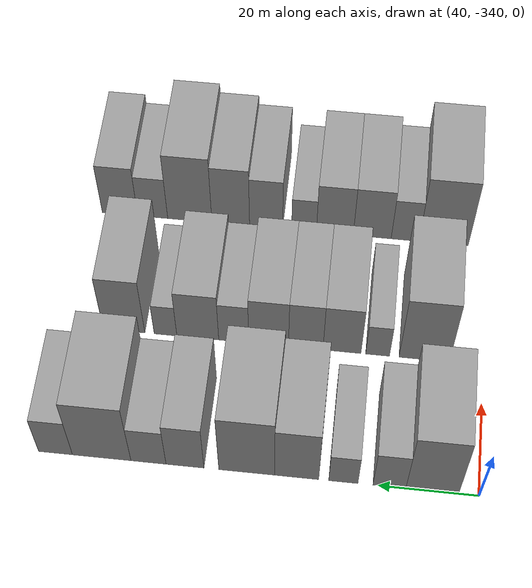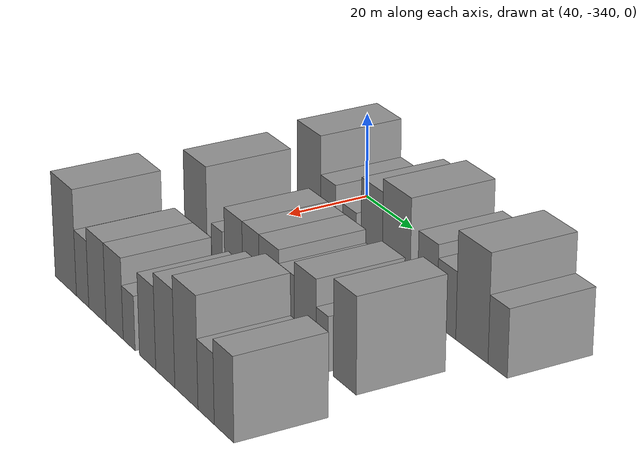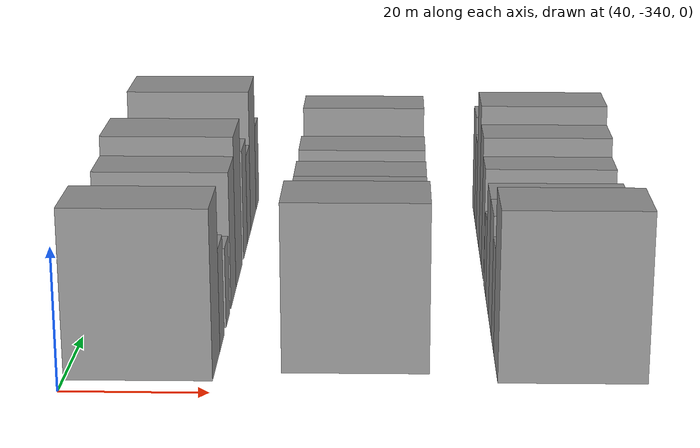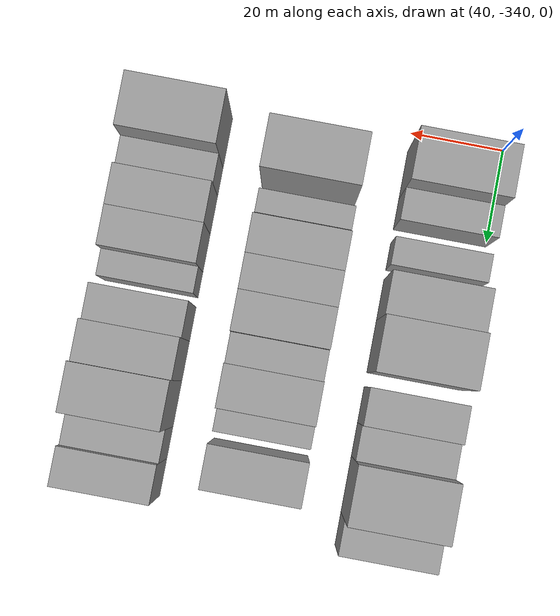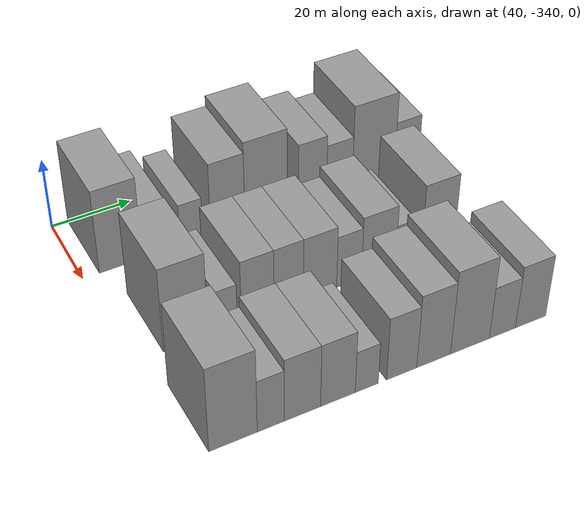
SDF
<sdf version="1.6">
 <world name="default">
  <model name="building_1">
   <static>1</static>
   <pose>50.0000 -330.7542 0 0.000000 0.000000 0.000000</pose>
   <link name="link">
    <pose>0 0 12.00 0 0 0</pose>
    <collision name="collision"><geometry><box><size>20.0000 10.4916 24.0000</size></box></geometry></collision>
    <visual name="visual">
     <cast_shadows>0</cast_shadows>
     <geometry><box><size>20.0000 10.4916 24.0000</size></box></geometry>
     <material>
      <script>
       <uri>model://grey_wall/materials/scripts</uri>
       <uri>model://grey_wall/materials/textures</uri>
       <name>vrc/grey_wall</name>
      </script>
     </material>
    </visual>
   </link>
  </model>
  <model name="building_2">
   <static>1</static>
   <pose>50.0000 -322.2304 0 0.000000 0.000000 0.000000</pose>
   <link name="link">
    <pose>0 0 7.50 0 0 0</pose>
    <collision name="collision"><geometry><box><size>20.0000 6.5560 15.0000</size></box></geometry></collision>
    <visual name="visual">
     <cast_shadows>0</cast_shadows>
     <geometry><box><size>20.0000 6.5560 15.0000</size></box></geometry>
     <material>
      <script>
       <uri>model://grey_wall/materials/scripts</uri>
       <uri>model://grey_wall/materials/textures</uri>
       <name>vrc/grey_wall</name>
      </script>
     </material>
    </visual>
   </link>
  </model>
  <model name="building_3">
   <static>1</static>
   <pose>50.0000 -313.0369 0 0.000000 0.000000 0.000000</pose>
   <link name="link">
    <pose>0 0 6.00 0 0 0</pose>
    <collision name="collision"><geometry><box><size>20.0000 5.8309 12.0000</size></box></geometry></collision>
    <visual name="visual">
     <cast_shadows>0</cast_shadows>
     <geometry><box><size>20.0000 5.8309 12.0000</size></box></geometry>
     <material>
      <script>
       <uri>model://grey_wall/materials/scripts</uri>
       <uri>model://grey_wall/materials/textures</uri>
       <name>vrc/grey_wall</name>
      </script>
     </material>
    </visual>
   </link>
  </model>
  <model name="building_4">
   <static>1</static>
   <pose>50.0000 -303.6895 0 0.000000 0.000000 0.000000</pose>
   <link name="link">
    <pose>0 0 10.50 0 0 0</pose>
    <collision name="collision"><geometry><box><size>20.0000 8.8640 21.0000</size></box></geometry></collision>
    <visual name="visual">
     <cast_shadows>0</cast_shadows>
     <geometry><box><size>20.0000 8.8640 21.0000</size></box></geometry>
     <material>
      <script>
       <uri>model://grey_wall/materials/scripts</uri>
       <uri>model://grey_wall/materials/textures</uri>
       <name>vrc/grey_wall</name>
      </script>
     </material>
    </visual>
   </link>
  </model>
  <model name="building_5">
   <static>1</static>
   <pose>50.0000 -293.6580 0 0.000000 0.000000 0.000000</pose>
   <link name="link">
    <pose>0 0 12.00 0 0 0</pose>
    <collision name="collision"><geometry><box><size>20.0000 11.1990 24.0000</size></box></geometry></collision>
    <visual name="visual">
     <cast_shadows>0</cast_shadows>
     <geometry><box><size>20.0000 11.1990 24.0000</size></box></geometry>
     <material>
      <script>
       <uri>model://grey_wall/materials/scripts</uri>
       <uri>model://grey_wall/materials/textures</uri>
       <name>vrc/grey_wall</name>
      </script>
     </material>
    </visual>
   </link>
  </model>
  <model name="building_6">
   <static>1</static>
   <pose>50.0000 -281.2292 0 0.000000 0.000000 0.000000</pose>
   <link name="link">
    <pose>0 0 9.00 0 0 0</pose>
    <collision name="collision"><geometry><box><size>20.0000 7.6587 18.0000</size></box></geometry></collision>
    <visual name="visual">
     <cast_shadows>0</cast_shadows>
     <geometry><box><size>20.0000 7.6587 18.0000</size></box></geometry>
     <material>
      <script>
       <uri>model://grey_wall/materials/scripts</uri>
       <uri>model://grey_wall/materials/textures</uri>
       <name>vrc/grey_wall</name>
      </script>
     </material>
    </visual>
   </link>
  </model>
  <model name="building_7">
   <static>1</static>
   <pose>50.0000 -273.8383 0 0.000000 0.000000 0.000000</pose>
   <link name="link">
    <pose>0 0 7.50 0 0 0</pose>
    <collision name="collision"><geometry><box><size>20.0000 7.1231 15.0000</size></box></geometry></collision>
    <visual name="visual">
     <cast_shadows>0</cast_shadows>
     <geometry><box><size>20.0000 7.1231 15.0000</size></box></geometry>
     <material>
      <script>
       <uri>model://grey_wall/materials/scripts</uri>
       <uri>model://grey_wall/materials/textures</uri>
       <name>vrc/grey_wall</name>
      </script>
     </material>
    </visual>
   </link>
  </model>
  <model name="building_8">
   <static>1</static>
   <pose>50.0000 -264.3221 0 0.000000 0.000000 0.000000</pose>
   <link name="link">
    <pose>0 0 12.00 0 0 0</pose>
    <collision name="collision"><geometry><box><size>20.0000 11.9093 24.0000</size></box></geometry></collision>
    <visual name="visual">
     <cast_shadows>0</cast_shadows>
     <geometry><box><size>20.0000 11.9093 24.0000</size></box></geometry>
     <material>
      <script>
       <uri>model://grey_wall/materials/scripts</uri>
       <uri>model://grey_wall/materials/textures</uri>
       <name>vrc/grey_wall</name>
      </script>
     </material>
    </visual>
   </link>
  </model>
  <model name="building_9">
   <static>1</static>
   <pose>50.0000 -254.9074 0 0.000000 0.000000 0.000000</pose>
   <link name="link">
    <pose>0 0 7.50 0 0 0</pose>
    <collision name="collision"><geometry><box><size>20.0000 6.9201 15.0000</size></box></geometry></collision>
    <visual name="visual">
     <cast_shadows>0</cast_shadows>
     <geometry><box><size>20.0000 6.9201 15.0000</size></box></geometry>
     <material>
      <script>
       <uri>model://grey_wall/materials/scripts</uri>
       <uri>model://grey_wall/materials/textures</uri>
       <name>vrc/grey_wall</name>
      </script>
     </material>
    </visual>
   </link>
  </model>
  <model name="building_77">
   <static>1</static>
   <pose>79.0000 -327.7335 0 0.000000 0.000000 0.000000</pose>
   <link name="link">
    <pose>0 0 12.00 0 0 0</pose>
    <collision name="collision"><geometry><box><size>20.0000 10.5329 24.0000</size></box></geometry></collision>
    <visual name="visual">
     <cast_shadows>0</cast_shadows>
     <geometry><box><size>20.0000 10.5329 24.0000</size></box></geometry>
     <material>
      <script>
       <uri>model://grey_wall/materials/scripts</uri>
       <uri>model://grey_wall/materials/textures</uri>
       <name>vrc/grey_wall</name>
      </script>
     </material>
    </visual>
   </link>
  </model>
  <model name="building_78">
   <static>1</static>
   <pose>79.0000 -317.9651 0 0.000000 0.000000 0.000000</pose>
   <link name="link">
    <pose>0 0 6.00 0 0 0</pose>
    <collision name="collision"><geometry><box><size>20.0000 5.0040 12.0000</size></box></geometry></collision>
    <visual name="visual">
     <cast_shadows>0</cast_shadows>
     <geometry><box><size>20.0000 5.0040 12.0000</size></box></geometry>
     <material>
      <script>
       <uri>model://grey_wall/materials/scripts</uri>
       <uri>model://grey_wall/materials/textures</uri>
       <name>vrc/grey_wall</name>
      </script>
     </material>
    </visual>
   </link>
  </model>
  <model name="building_79">
   <static>1</static>
   <pose>79.0000 -310.4684 0 0.000000 0.000000 0.000000</pose>
   <link name="link">
    <pose>0 0 9.00 0 0 0</pose>
    <collision name="collision"><geometry><box><size>20.0000 7.9895 18.0000</size></box></geometry></collision>
    <visual name="visual">
     <cast_shadows>0</cast_shadows>
     <geometry><box><size>20.0000 7.9895 18.0000</size></box></geometry>
     <material>
      <script>
       <uri>model://grey_wall/materials/scripts</uri>
       <uri>model://grey_wall/materials/textures</uri>
       <name>vrc/grey_wall</name>
      </script>
     </material>
    </visual>
   </link>
  </model>
  <model name="building_80">
   <static>1</static>
   <pose>79.0000 -302.8256 0 0.000000 0.000000 0.000000</pose>
   <link name="link">
    <pose>0 0 9.00 0 0 0</pose>
    <collision name="collision"><geometry><box><size>20.0000 7.2963 18.0000</size></box></geometry></collision>
    <visual name="visual">
     <cast_shadows>0</cast_shadows>
     <geometry><box><size>20.0000 7.2963 18.0000</size></box></geometry>
     <material>
      <script>
       <uri>model://grey_wall/materials/scripts</uri>
       <uri>model://grey_wall/materials/textures</uri>
       <name>vrc/grey_wall</name>
      </script>
     </material>
    </visual>
   </link>
  </model>
  <model name="building_81">
   <static>1</static>
   <pose>79.0000 -294.9675 0 0.000000 0.000000 0.000000</pose>
   <link name="link">
    <pose>0 0 9.00 0 0 0</pose>
    <collision name="collision"><geometry><box><size>20.0000 8.4199 18.0000</size></box></geometry></collision>
    <visual name="visual">
     <cast_shadows>0</cast_shadows>
     <geometry><box><size>20.0000 8.4199 18.0000</size></box></geometry>
     <material>
      <script>
       <uri>model://grey_wall/materials/scripts</uri>
       <uri>model://grey_wall/materials/textures</uri>
       <name>vrc/grey_wall</name>
      </script>
     </material>
    </visual>
   </link>
  </model>
  <model name="building_82">
   <static>1</static>
   <pose>79.0000 -287.5718 0 0.000000 0.000000 0.000000</pose>
   <link name="link">
    <pose>0 0 7.50 0 0 0</pose>
    <collision name="collision"><geometry><box><size>20.0000 6.3714 15.0000</size></box></geometry></collision>
    <visual name="visual">
     <cast_shadows>0</cast_shadows>
     <geometry><box><size>20.0000 6.3714 15.0000</size></box></geometry>
     <material>
      <script>
       <uri>model://grey_wall/materials/scripts</uri>
       <uri>model://grey_wall/materials/textures</uri>
       <name>vrc/grey_wall</name>
      </script>
     </material>
    </visual>
   </link>
  </model>
  <model name="building_83">
   <static>1</static>
   <pose>79.0000 -279.9257 0 0.000000 0.000000 0.000000</pose>
   <link name="link">
    <pose>0 0 9.00 0 0 0</pose>
    <collision name="collision"><geometry><box><size>20.0000 8.9208 18.0000</size></box></geometry></collision>
    <visual name="visual">
     <cast_shadows>0</cast_shadows>
     <geometry><box><size>20.0000 8.9208 18.0000</size></box></geometry>
     <material>
      <script>
       <uri>model://grey_wall/materials/scripts</uri>
       <uri>model://grey_wall/materials/textures</uri>
       <name>vrc/grey_wall</name>
      </script>
     </material>
    </visual>
   </link>
  </model>
  <model name="building_84">
   <static>1</static>
   <pose>79.0000 -273.0476 0 0.000000 0.000000 0.000000</pose>
   <link name="link">
    <pose>0 0 6.00 0 0 0</pose>
    <collision name="collision"><geometry><box><size>20.0000 4.8353 12.0000</size></box></geometry></collision>
    <visual name="visual">
     <cast_shadows>0</cast_shadows>
     <geometry><box><size>20.0000 4.8353 12.0000</size></box></geometry>
     <material>
      <script>
       <uri>model://grey_wall/materials/scripts</uri>
       <uri>model://grey_wall/materials/textures</uri>
       <name>vrc/grey_wall</name>
      </script>
     </material>
    </visual>
   </link>
  </model>
  <model name="building_85">
   <static>1</static>
   <pose>79.0000 -264.1736 0 0.000000 0.000000 0.000000</pose>
   <link name="link">
    <pose>0 0 10.50 0 0 0</pose>
    <collision name="collision"><geometry><box><size>20.0000 8.9127 21.0000</size></box></geometry></collision>
    <visual name="visual">
     <cast_shadows>0</cast_shadows>
     <geometry><box><size>20.0000 8.9127 21.0000</size></box></geometry>
     <material>
      <script>
       <uri>model://grey_wall/materials/scripts</uri>
       <uri>model://grey_wall/materials/textures</uri>
       <name>vrc/grey_wall</name>
      </script>
     </material>
    </visual>
   </link>
  </model>
  <model name="building_148">
   <static>1</static>
   <pose>108.0000 -330.6023 0 0.000000 0.000000 0.000000</pose>
   <link name="link">
    <pose>0 0 12.00 0 0 0</pose>
    <collision name="collision"><geometry><box><size>20.0000 10.7953 24.0000</size></box></geometry></collision>
    <visual name="visual">
     <cast_shadows>0</cast_shadows>
     <geometry><box><size>20.0000 10.7953 24.0000</size></box></geometry>
     <material>
      <script>
       <uri>model://grey_wall/materials/scripts</uri>
       <uri>model://grey_wall/materials/textures</uri>
       <name>vrc/grey_wall</name>
      </script>
     </material>
    </visual>
   </link>
  </model>
  <model name="building_149">
   <static>1</static>
   <pose>108.0000 -322.1263 0 0.000000 0.000000 0.000000</pose>
   <link name="link">
    <pose>0 0 7.50 0 0 0</pose>
    <collision name="collision"><geometry><box><size>20.0000 6.1567 15.0000</size></box></geometry></collision>
    <visual name="visual">
     <cast_shadows>0</cast_shadows>
     <geometry><box><size>20.0000 6.1567 15.0000</size></box></geometry>
     <material>
      <script>
       <uri>model://grey_wall/materials/scripts</uri>
       <uri>model://grey_wall/materials/textures</uri>
       <name>vrc/grey_wall</name>
      </script>
     </material>
    </visual>
   </link>
  </model>
  <model name="building_150">
   <static>1</static>
   <pose>108.0000 -314.8632 0 0.000000 0.000000 0.000000</pose>
   <link name="link">
    <pose>0 0 9.00 0 0 0</pose>
    <collision name="collision"><geometry><box><size>20.0000 8.3695 18.0000</size></box></geometry></collision>
    <visual name="visual">
     <cast_shadows>0</cast_shadows>
     <geometry><box><size>20.0000 8.3695 18.0000</size></box></geometry>
     <material>
      <script>
       <uri>model://grey_wall/materials/scripts</uri>
       <uri>model://grey_wall/materials/textures</uri>
       <name>vrc/grey_wall</name>
      </script>
     </material>
    </visual>
   </link>
  </model>
  <model name="building_151">
   <static>1</static>
   <pose>108.0000 -306.5923 0 0.000000 0.000000 0.000000</pose>
   <link name="link">
    <pose>0 0 9.00 0 0 0</pose>
    <collision name="collision"><geometry><box><size>20.0000 8.1722 18.0000</size></box></geometry></collision>
    <visual name="visual">
     <cast_shadows>0</cast_shadows>
     <geometry><box><size>20.0000 8.1722 18.0000</size></box></geometry>
     <material>
      <script>
       <uri>model://grey_wall/materials/scripts</uri>
       <uri>model://grey_wall/materials/textures</uri>
       <name>vrc/grey_wall</name>
      </script>
     </material>
    </visual>
   </link>
  </model>
  <model name="building_152">
   <static>1</static>
   <pose>108.0000 -299.7460 0 0.000000 0.000000 0.000000</pose>
   <link name="link">
    <pose>0 0 6.00 0 0 0</pose>
    <collision name="collision"><geometry><box><size>20.0000 5.5204 12.0000</size></box></geometry></collision>
    <visual name="visual">
     <cast_shadows>0</cast_shadows>
     <geometry><box><size>20.0000 5.5204 12.0000</size></box></geometry>
     <material>
      <script>
       <uri>model://grey_wall/materials/scripts</uri>
       <uri>model://grey_wall/materials/textures</uri>
       <name>vrc/grey_wall</name>
      </script>
     </material>
    </visual>
   </link>
  </model>
  <model name="building_153">
   <static>1</static>
   <pose>108.0000 -291.3064 0 0.000000 0.000000 0.000000</pose>
   <link name="link">
    <pose>0 0 9.00 0 0 0</pose>
    <collision name="collision"><geometry><box><size>20.0000 7.3590 18.0000</size></box></geometry></collision>
    <visual name="visual">
     <cast_shadows>0</cast_shadows>
     <geometry><box><size>20.0000 7.3590 18.0000</size></box></geometry>
     <material>
      <script>
       <uri>model://grey_wall/materials/scripts</uri>
       <uri>model://grey_wall/materials/textures</uri>
       <name>vrc/grey_wall</name>
      </script>
     </material>
    </visual>
   </link>
  </model>
  <model name="building_154">
   <static>1</static>
   <pose>108.0000 -283.4145 0 0.000000 0.000000 0.000000</pose>
   <link name="link">
    <pose>0 0 10.50 0 0 0</pose>
    <collision name="collision"><geometry><box><size>20.0000 8.4247 21.0000</size></box></geometry></collision>
    <visual name="visual">
     <cast_shadows>0</cast_shadows>
     <geometry><box><size>20.0000 8.4247 21.0000</size></box></geometry>
     <material>
      <script>
       <uri>model://grey_wall/materials/scripts</uri>
       <uri>model://grey_wall/materials/textures</uri>
       <name>vrc/grey_wall</name>
      </script>
     </material>
    </visual>
   </link>
  </model>
  <model name="building_155">
   <static>1</static>
   <pose>108.0000 -274.2490 0 0.000000 0.000000 0.000000</pose>
   <link name="link">
    <pose>0 0 12.00 0 0 0</pose>
    <collision name="collision"><geometry><box><size>20.0000 9.9064 24.0000</size></box></geometry></collision>
    <visual name="visual">
     <cast_shadows>0</cast_shadows>
     <geometry><box><size>20.0000 9.9064 24.0000</size></box></geometry>
     <material>
      <script>
       <uri>model://grey_wall/materials/scripts</uri>
       <uri>model://grey_wall/materials/textures</uri>
       <name>vrc/grey_wall</name>
      </script>
     </material>
    </visual>
   </link>
  </model>
  <model name="building_156">
   <static>1</static>
   <pose>108.0000 -265.9204 0 0.000000 0.000000 0.000000</pose>
   <link name="link">
    <pose>0 0 7.50 0 0 0</pose>
    <collision name="collision"><geometry><box><size>20.0000 6.7509 15.0000</size></box></geometry></collision>
    <visual name="visual">
     <cast_shadows>0</cast_shadows>
     <geometry><box><size>20.0000 6.7509 15.0000</size></box></geometry>
     <material>
      <script>
       <uri>model://grey_wall/materials/scripts</uri>
       <uri>model://grey_wall/materials/textures</uri>
       <name>vrc/grey_wall</name>
      </script>
     </material>
    </visual>
   </link>
  </model>
  <model name="building_157">
   <static>1</static>
   <pose>108.0000 -258.5558 0 0.000000 0.000000 0.000000</pose>
   <link name="link">
    <pose>0 0 9.00 0 0 0</pose>
    <collision name="collision"><geometry><box><size>20.0000 7.9782 18.0000</size></box></geometry></collision>
    <visual name="visual">
     <cast_shadows>0</cast_shadows>
     <geometry><box><size>20.0000 7.9782 18.0000</size></box></geometry>
     <material>
      <script>
       <uri>model://grey_wall/materials/scripts</uri>
       <uri>model://grey_wall/materials/textures</uri>
       <name>vrc/grey_wall</name>
      </script>
     </material>
    </visual>
   </link>
  </model>
 </world>
</sdf>
